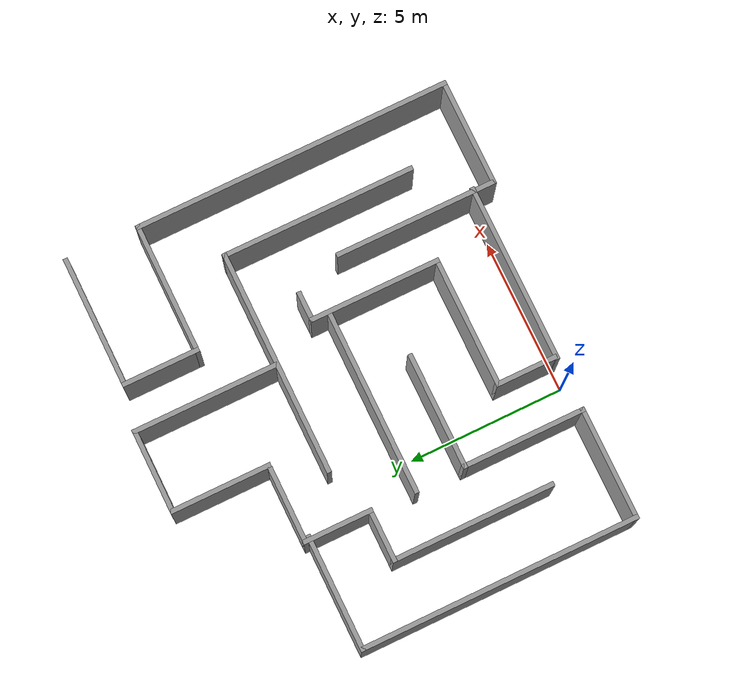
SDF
<?xml version='1.0'?>
<sdf version='1.7'>
  <model name='maze'>
    <pose>2.49375 5.72776 0 0 -0 0</pose>
    <link name='Wall_11'>
      <collision name='Wall_11_Collision'>
        <geometry>
          <box>
            <size>3.65748 0.15 2.5</size>
          </box>
        </geometry>
        <pose>0 0 1.25 0 -0 0</pose>
      </collision>
      <visual name='Wall_11_Visual'>
        <pose>0 0 1.25 0 -0 0</pose>
        <geometry>
          <box>
            <size>3.65748 0.15 2.5</size>
          </box>
        </geometry>
        <material>
          <script>
            <uri>file://media/materials/scripts/gazebo.material</uri>
            <name>Gazebo/Grey</name>
          </script>
          <ambient>1 1 1 1</ambient>
        </material>
        <meta>
          <layer>0</layer>
        </meta>
      </visual>
      <pose>-5.317 -5.72694 0 0 -0 0</pose>
    </link>
    <link name='Wall_14'>
      <collision name='Wall_14_Collision'>
        <geometry>
          <box>
            <size>4 0.15 2.5</size>
          </box>
        </geometry>
        <pose>0 0 1.25 0 -0 0</pose>
      </collision>
      <visual name='Wall_14_Visual'>
        <pose>0 0 1.25 0 -0 0</pose>
        <geometry>
          <box>
            <size>4 0.15 2.5</size>
          </box>
        </geometry>
        <material>
          <script>
            <uri>file://media/materials/scripts/gazebo.material</uri>
            <name>Gazebo/Grey</name>
          </script>
          <ambient>1 1 1 1</ambient>
        </material>
        <meta>
          <layer>0</layer>
        </meta>
      </visual>
      <pose>-3.56326 -3.80194 0 0 -0 1.5708</pose>
    </link>
    <link name='Wall_15'>
      <collision name='Wall_15_Collision'>
        <geometry>
          <box>
            <size>3.76148 0.15 2.5</size>
          </box>
        </geometry>
        <pose>0 0 1.25 0 -0 0</pose>
      </collision>
      <visual name='Wall_15_Visual'>
        <pose>0 0 1.25 0 -0 0</pose>
        <geometry>
          <box>
            <size>3.76148 0.15 2.5</size>
          </box>
        </geometry>
        <material>
          <script>
            <uri>file://media/materials/scripts/gazebo.material</uri>
            <name>Gazebo/Grey</name>
          </script>
          <ambient>1 1 1 1</ambient>
        </material>
        <meta>
          <layer>0</layer>
        </meta>
      </visual>
      <pose>-1.75753 -1.87694 0 0 -0 0</pose>
    </link>
    <link name='Wall_17'>
      <collision name='Wall_17_Collision'>
        <geometry>
          <box>
            <size>6 0.15 2.5</size>
          </box>
        </geometry>
        <pose>0 0 1.25 0 -0 0</pose>
      </collision>
      <visual name='Wall_17_Visual'>
        <pose>0 0 1.25 0 -0 0</pose>
        <geometry>
          <box>
            <size>6 0.15 2.5</size>
          </box>
        </geometry>
        <material>
          <script>
            <uri>file://media/materials/scripts/gazebo.material</uri>
            <name>Gazebo/Grey</name>
          </script>
          <ambient>1 1 1 1</ambient>
        </material>
        <meta>
          <layer>0</layer>
        </meta>
      </visual>
      <pose>-0.678491 -0.276937 0 0 -0 3.14159</pose>
    </link>
    <link name='Wall_20'>
      <collision name='Wall_20_Collision'>
        <geometry>
          <box>
            <size>2 0.15 2.5</size>
          </box>
        </geometry>
        <pose>0 0 1.25 0 -0 0</pose>
      </collision>
      <visual name='Wall_20_Visual'>
        <pose>0 0 1.25 0 -0 0</pose>
        <geometry>
          <box>
            <size>2 0.15 2.5</size>
          </box>
        </geometry>
        <material>
          <script>
            <uri>file://media/materials/scripts/gazebo.material</uri>
            <name>Gazebo/Grey</name>
          </script>
          <ambient>1 1 1 1</ambient>
        </material>
        <meta>
          <layer>0</layer>
        </meta>
      </visual>
      <pose>-1.80645 -4.75255 0 0 -0 1.5708</pose>
    </link>
    <link name='Wall_21'>
      <collision name='Wall_21_Collision'>
        <geometry>
          <box>
            <size>4.25 0.15 2.5</size>
          </box>
        </geometry>
        <pose>0 0 1.25 0 -0 0</pose>
      </collision>
      <visual name='Wall_21_Visual'>
        <pose>0 0 1.25 0 -0 0</pose>
        <geometry>
          <box>
            <size>4.25 0.15 2.5</size>
          </box>
        </geometry>
        <material>
          <script>
            <uri>file://media/materials/scripts/gazebo.material</uri>
            <name>Gazebo/Grey</name>
          </script>
          <ambient>1 1 1 1</ambient>
        </material>
        <meta>
          <layer>0</layer>
        </meta>
      </visual>
      <pose>0.24355 -3.82755 0 0 -0 0</pose>
    </link>
    <link name='Wall_22'>
      <collision name='Wall_22_Collision'>
        <geometry>
          <box>
            <size>4.25 0.15 2.5</size>
          </box>
        </geometry>
        <pose>0 0 1.25 0 -0 0</pose>
      </collision>
      <visual name='Wall_22_Visual'>
        <pose>0 0 1.25 0 -0 0</pose>
        <geometry>
          <box>
            <size>4.25 0.15 2.5</size>
          </box>
        </geometry>
        <material>
          <script>
            <uri>file://media/materials/scripts/gazebo.material</uri>
            <name>Gazebo/Grey</name>
          </script>
          <ambient>1 1 1 1</ambient>
        </material>
        <meta>
          <layer>0</layer>
        </meta>
      </visual>
      <pose>2.29355 -1.77755 0 0 -0 1.5708</pose>
    </link>
    <link name='Wall_23'>
      <collision name='Wall_23_Collision'>
        <geometry>
          <box>
            <size>1 0.15 2.5</size>
          </box>
        </geometry>
        <pose>0 0 1.25 0 -0 0</pose>
      </collision>
      <visual name='Wall_23_Visual'>
        <pose>0 0 1.25 0 -0 0</pose>
        <geometry>
          <box>
            <size>1 0.15 2.5</size>
          </box>
        </geometry>
        <material>
          <script>
            <uri>file://media/materials/scripts/gazebo.material</uri>
            <name>Gazebo/Grey</name>
          </script>
          <ambient>1 1 1 1</ambient>
        </material>
        <meta>
          <layer>0</layer>
        </meta>
      </visual>
      <pose>2.71855 0.272449 0 0 -0 0</pose>
    </link>
    <link name='Wall_25'>
      <collision name='Wall_25_Collision'>
        <geometry>
          <box>
            <size>5.25 0.15 2.5</size>
          </box>
        </geometry>
        <pose>0 0 1.25 0 -0 0</pose>
      </collision>
      <visual name='Wall_25_Visual'>
        <pose>0 0 1.25 0 -0 0</pose>
        <geometry>
          <box>
            <size>5.25 0.15 2.5</size>
          </box>
        </geometry>
        <material>
          <script>
            <uri>file://media/materials/scripts/gazebo.material</uri>
            <name>Gazebo/Grey</name>
          </script>
          <ambient>1 1 1 1</ambient>
        </material>
        <meta>
          <layer>0</layer>
        </meta>
      </visual>
      <pose>-5.1453 -1.37767 0 0 -0 1.5708</pose>
    </link>
    <link name='Wall_26'>
      <collision name='Wall_26_Collision'>
        <geometry>
          <box>
            <size>1.75 0.15 2.5</size>
          </box>
        </geometry>
        <pose>0 0 1.25 0 -0 0</pose>
      </collision>
      <visual name='Wall_26_Visual'>
        <pose>0 0 1.25 0 -0 0</pose>
        <geometry>
          <box>
            <size>1.75 0.15 2.5</size>
          </box>
        </geometry>
        <material>
          <script>
            <uri>file://media/materials/scripts/gazebo.material</uri>
            <name>Gazebo/Grey</name>
          </script>
          <ambient>1 1 1 1</ambient>
        </material>
        <meta>
          <layer>0</layer>
        </meta>
      </visual>
      <pose>-4.3453 1.17233 0 0 -0 0</pose>
    </link>
    <link name='Wall_27'>
      <collision name='Wall_27_Collision'>
        <geometry>
          <box>
            <size>2.25 0.15 2.5</size>
          </box>
        </geometry>
        <pose>0 0 1.25 0 -0 0</pose>
      </collision>
      <visual name='Wall_27_Visual'>
        <pose>0 0 1.25 0 -0 0</pose>
        <geometry>
          <box>
            <size>2.25 0.15 2.5</size>
          </box>
        </geometry>
        <material>
          <script>
            <uri>file://media/materials/scripts/gazebo.material</uri>
            <name>Gazebo/Grey</name>
          </script>
          <ambient>1 1 1 1</ambient>
        </material>
        <meta>
          <layer>0</layer>
        </meta>
      </visual>
      <pose>-3.5453 2.22233 0 0 -0 1.5708</pose>
    </link>
    <link name='Wall_28'>
      <collision name='Wall_28_Collision'>
        <geometry>
          <box>
            <size>2.5 0.15 2.5</size>
          </box>
        </geometry>
        <pose>0 0 1.25 0 -0 0</pose>
      </collision>
      <visual name='Wall_28_Visual'>
        <pose>0 0 1.25 0 -0 0</pose>
        <geometry>
          <box>
            <size>2.5 0.15 2.5</size>
          </box>
        </geometry>
        <material>
          <script>
            <uri>file://media/materials/scripts/gazebo.material</uri>
            <name>Gazebo/Grey</name>
          </script>
          <ambient>1 1 1 1</ambient>
        </material>
        <meta>
          <layer>0</layer>
        </meta>
      </visual>
      <pose>-2.3703 3.27233 0 0 -0 0</pose>
    </link>
    <link name='Wall_30'>
      <collision name='Wall_30_Collision'>
        <geometry>
          <box>
            <size>7.25 0.15 2.5</size>
          </box>
        </geometry>
        <pose>0 0 1.25 0 -0 0</pose>
      </collision>
      <visual name='Wall_30_Visual'>
        <pose>0 0 1.25 0 -0 0</pose>
        <geometry>
          <box>
            <size>7.25 0.15 2.5</size>
          </box>
        </geometry>
        <material>
          <script>
            <uri>file://media/materials/scripts/gazebo.material</uri>
            <name>Gazebo/Grey</name>
          </script>
          <ambient>1 1 1 1</ambient>
        </material>
        <meta>
          <layer>0</layer>
        </meta>
      </visual>
      <pose>1.59922 1.76712 0 0 -0 0</pose>
    </link>
    <link name='Wall_31'>
      <collision name='Wall_31_Collision'>
        <geometry>
          <box>
            <size>6.25 0.15 2.5</size>
          </box>
        </geometry>
        <pose>0 0 1.25 0 -0 0</pose>
      </collision>
      <visual name='Wall_31_Visual'>
        <pose>0 0 1.25 0 -0 0</pose>
        <geometry>
          <box>
            <size>6.25 0.15 2.5</size>
          </box>
        </geometry>
        <material>
          <script>
            <uri>file://media/materials/scripts/gazebo.material</uri>
            <name>Gazebo/Grey</name>
          </script>
          <ambient>1 1 1 1</ambient>
        </material>
        <meta>
          <layer>0</layer>
        </meta>
      </visual>
      <pose>5.14922 -1.28288 0 0 -0 -1.5708</pose>
    </link>
    <link name='Wall_33'>
      <collision name='Wall_33_Collision'>
        <geometry>
          <box>
            <size>5.25 0.15 2.5</size>
          </box>
        </geometry>
        <pose>0 0 1.25 0 -0 0</pose>
      </collision>
      <visual name='Wall_33_Visual'>
        <pose>0 0 1.25 0 -0 0</pose>
        <geometry>
          <box>
            <size>5.25 0.15 2.5</size>
          </box>
        </geometry>
        <material>
          <script>
            <uri>file://media/materials/scripts/gazebo.material</uri>
            <name>Gazebo/Grey</name>
          </script>
          <ambient>1 1 1 1</ambient>
        </material>
        <meta>
          <layer>0</layer>
        </meta>
      </visual>
      <pose>3.72048 -3.83252 0 0 -0 -1.5708</pose>
    </link>
    <link name='Wall_34'>
      <collision name='Wall_34_Collision'>
        <geometry>
          <box>
            <size>3.5 0.15 2.5</size>
          </box>
        </geometry>
        <pose>0 0 1.25 0 -0 0</pose>
      </collision>
      <visual name='Wall_34_Visual'>
        <pose>0 0 1.25 0 -0 0</pose>
        <geometry>
          <box>
            <size>3.5 0.15 2.5</size>
          </box>
        </geometry>
        <material>
          <script>
            <uri>file://media/materials/scripts/gazebo.material</uri>
            <name>Gazebo/Grey</name>
          </script>
          <ambient>1 1 1 1</ambient>
        </material>
        <meta>
          <layer>0</layer>
        </meta>
      </visual>
      <pose>5.39548 -6.38253 0 0 -0 0</pose>
    </link>
    <link name='Wall_35'>
      <collision name='Wall_35_Collision'>
        <geometry>
          <box>
            <size>10.25 0.15 2.5</size>
          </box>
        </geometry>
        <pose>0 0 1.25 0 -0 0</pose>
      </collision>
      <visual name='Wall_35_Visual'>
        <pose>0 0 1.25 0 -0 0</pose>
        <geometry>
          <box>
            <size>10.25 0.15 2.5</size>
          </box>
        </geometry>
        <material>
          <script>
            <uri>file://media/materials/scripts/gazebo.material</uri>
            <name>Gazebo/Grey</name>
          </script>
          <ambient>1 1 1 1</ambient>
        </material>
        <meta>
          <layer>0</layer>
        </meta>
      </visual>
      <pose>7.05299 -1.33253 0 0 -0 1.57426</pose>
    </link>
    <link name='Wall_39'>
      <collision name='Wall_39_Collision'>
        <geometry>
          <box>
            <size>4.25 0.15 2.5</size>
          </box>
        </geometry>
        <pose>0 0 1.25 0 -0 0</pose>
      </collision>
      <visual name='Wall_39_Visual'>
        <pose>0 0 1.25 0 -0 0</pose>
        <geometry>
          <box>
            <size>4.25 0.15 2.5</size>
          </box>
        </geometry>
        <material>
          <script>
            <uri>file://media/materials/scripts/gazebo.material</uri>
            <name>Gazebo/Grey</name>
          </script>
          <ambient>1 1 1 1</ambient>
        </material>
        <meta>
          <layer>0</layer>
        </meta>
      </visual>
      <pose>4.9855 3.71747 0 0 -0 3.14159</pose>
    </link>
    <link name='Wall_40'>
      <collision name='Wall_40_Collision'>
        <geometry>
          <box>
            <size>2.5 0.15 2.5</size>
          </box>
        </geometry>
        <pose>0 0 1.25 0 -0 0</pose>
      </collision>
      <visual name='Wall_40_Visual'>
        <pose>0 0 1.25 0 -0 0</pose>
        <geometry>
          <box>
            <size>2.5 0.15 2.5</size>
          </box>
        </geometry>
        <material>
          <script>
            <uri>file://media/materials/scripts/gazebo.material</uri>
            <name>Gazebo/Grey</name>
          </script>
          <ambient>1 1 1 1</ambient>
        </material>
        <meta>
          <layer>0</layer>
        </meta>
      </visual>
      <pose>2.9355 4.89247 0 0 -0 1.5708</pose>
    </link>
    <link name='Wall_41'>
      <collision name='Wall_41_Collision'>
        <geometry>
          <box>
            <size>4.25 0.15 2.5</size>
          </box>
        </geometry>
        <pose>0 0 1.25 0 -0 0</pose>
      </collision>
      <visual name='Wall_41_Visual'>
        <pose>0 0 1.25 0 -0 0</pose>
        <geometry>
          <box>
            <size>4.25 0.15 2.5</size>
          </box>
        </geometry>
        <material>
          <script>
            <uri>file://media/materials/scripts/gazebo.material</uri>
            <name>Gazebo/Grey</name>
          </script>
          <ambient>1 1 1 1</ambient>
        </material>
        <meta>
          <layer>0</layer>
        </meta>
      </visual>
      <pose>4.9855 6.06747 0 0 -0 0</pose>
    </link>
    <link name='Wall_43'>
      <collision name='Wall_43_Collision'>
        <geometry>
          <box>
            <size>3.25 0.15 2.5</size>
          </box>
        </geometry>
        <pose>0 0 1.25 0 -0 0</pose>
      </collision>
      <visual name='Wall_43_Visual'>
        <pose>0 0 1.25 0 -0 0</pose>
        <geometry>
          <box>
            <size>3.25 0.15 2.5</size>
          </box>
        </geometry>
        <material>
          <script>
            <uri>file://media/materials/scripts/gazebo.material</uri>
            <name>Gazebo/Grey</name>
          </script>
          <ambient>1 1 1 1</ambient>
        </material>
        <meta>
          <layer>0</layer>
        </meta>
      </visual>
      <pose>-1.06604 4.83275 0 0 -0 1.5708</pose>
    </link>
    <link name='Wall_44'>
      <collision name='Wall_44_Collision'>
        <geometry>
          <box>
            <size>2.75 0.15 2.5</size>
          </box>
        </geometry>
        <pose>0 0 1.25 0 -0 0</pose>
      </collision>
      <visual name='Wall_44_Visual'>
        <pose>0 0 1.25 0 -0 0</pose>
        <geometry>
          <box>
            <size>2.75 0.15 2.5</size>
          </box>
        </geometry>
        <material>
          <script>
            <uri>file://media/materials/scripts/gazebo.material</uri>
            <name>Gazebo/Grey</name>
          </script>
          <ambient>1 1 1 1</ambient>
        </material>
        <meta>
          <layer>0</layer>
        </meta>
      </visual>
      <pose>0.233956 6.38276 0 0 -0 0</pose>
    </link>
    <link name='Wall_45'>
      <collision name='Wall_45_Collision'>
        <geometry>
          <box>
            <size>4.75 0.15 2.5</size>
          </box>
        </geometry>
        <pose>0 0 1.25 0 -0 0</pose>
      </collision>
      <visual name='Wall_45_Visual'>
        <pose>0 0 1.25 0 -0 0</pose>
        <geometry>
          <box>
            <size>4.75 0.15 2.5</size>
          </box>
        </geometry>
        <material>
          <script>
            <uri>file://media/materials/scripts/gazebo.material</uri>
            <name>Gazebo/Grey</name>
          </script>
          <ambient>1 1 1 1</ambient>
        </material>
        <meta>
          <layer>0</layer>
        </meta>
      </visual>
      <pose>1.53396 4.08275 0 0 -0 -1.5708</pose>
    </link>
    <link name='Wall_47'>
      <collision name='Wall_47_Collision'>
        <geometry>
          <box>
            <size>9 0.15 2.5</size>
          </box>
        </geometry>
        <pose>0 0 1.25 0 -0 0</pose>
      </collision>
      <visual name='Wall_47_Visual'>
        <pose>0 0 1.25 0 -0 0</pose>
        <geometry>
          <box>
            <size>9 0.15 2.5</size>
          </box>
        </geometry>
        <material>
          <script>
            <uri>file://media/materials/scripts/gazebo.material</uri>
            <name>Gazebo/Grey</name>
          </script>
          <ambient>1 1 1 1</ambient>
        </material>
        <meta>
          <layer>0</layer>
        </meta>
      </visual>
      <pose>-7.07074 -1.30194 0 0 -0 1.5708</pose>
    </link>
    <link name='Wall_48'>
      <collision name='Wall_48_Collision'>
        <geometry>
          <box>
            <size>3.75 0.15 2.5</size>
          </box>
        </geometry>
        <pose>0 0 1.25 0 -0 0</pose>
      </collision>
      <visual name='Wall_48_Visual'>
        <pose>0 0 1.25 0 -0 0</pose>
        <geometry>
          <box>
            <size>3.75 0.15 2.5</size>
          </box>
        </geometry>
        <material>
          <script>
            <uri>file://media/materials/scripts/gazebo.material</uri>
            <name>Gazebo/Grey</name>
          </script>
          <ambient>1 1 1 1</ambient>
        </material>
        <meta>
          <layer>0</layer>
        </meta>
      </visual>
      <pose>-5.27074 3.12306 0 0 -0 0</pose>
    </link>
    <link name='Wall_50'>
      <collision name='Wall_50_Collision'>
        <geometry>
          <box>
            <size>5.75 0.15 2.5</size>
          </box>
        </geometry>
        <pose>0 0 1.25 0 -0 0</pose>
      </collision>
      <visual name='Wall_50_Visual'>
        <pose>0 0 1.25 0 -0 0</pose>
        <geometry>
          <box>
            <size>5.75 0.15 2.5</size>
          </box>
        </geometry>
        <material>
          <script>
            <uri>file://media/materials/scripts/gazebo.material</uri>
            <name>Gazebo/Grey</name>
          </script>
          <ambient>1 1 1 1</ambient>
        </material>
        <meta>
          <layer>0</layer>
        </meta>
      </visual>
      <pose>0.969395 -5.73302 0 0 -0 3.14159</pose>
    </link>
    <static>1</static>
  </model>
</sdf>
